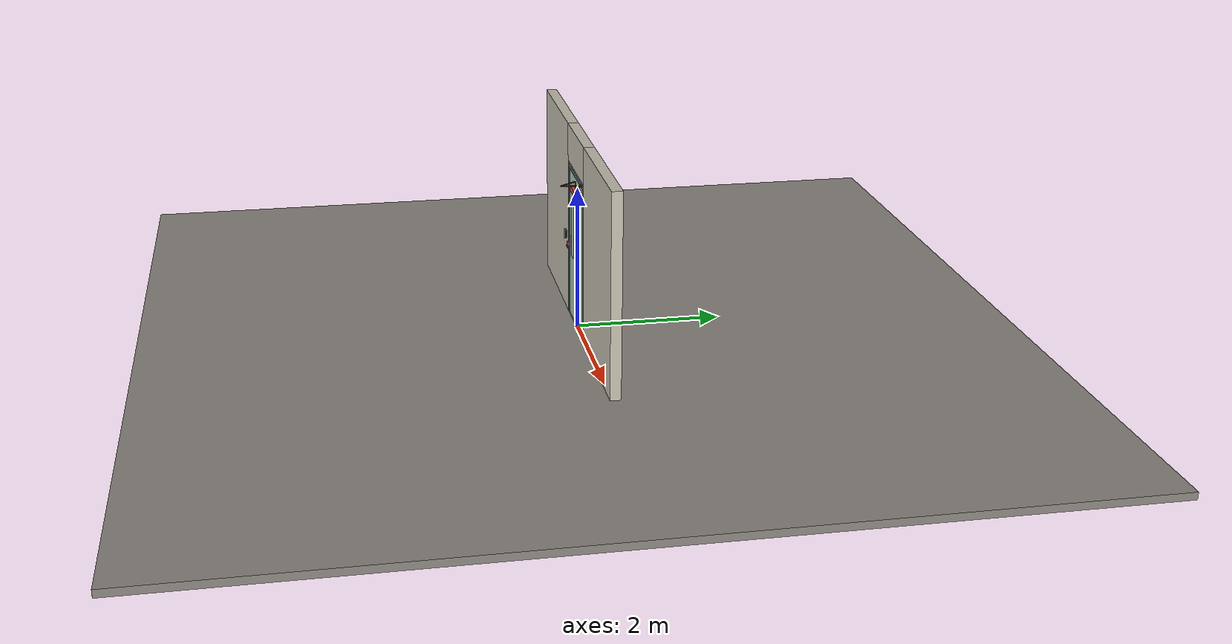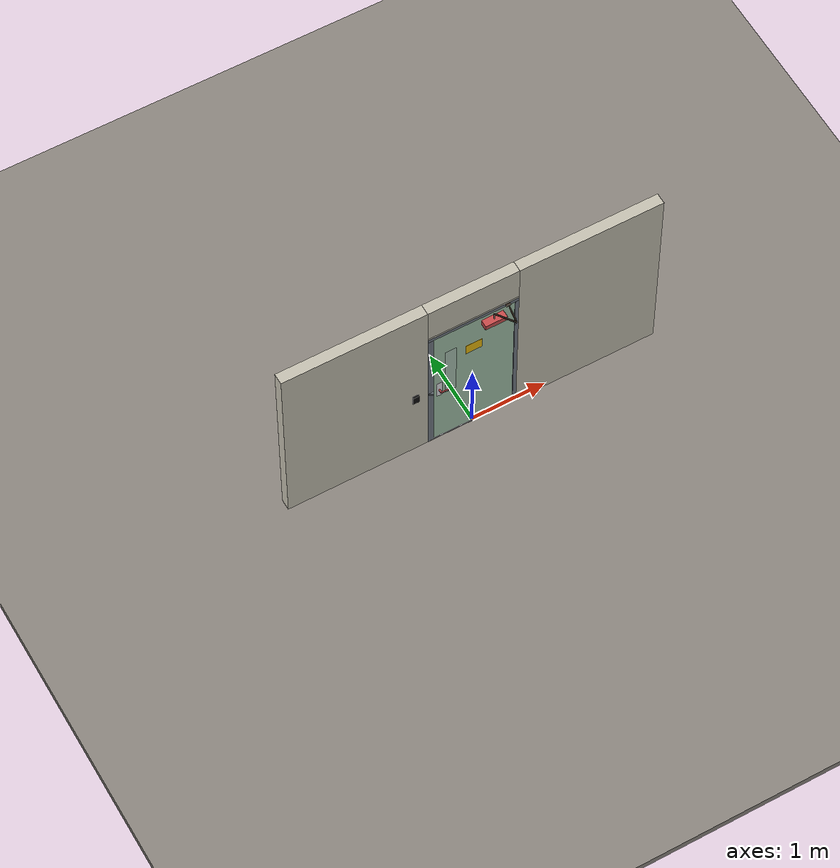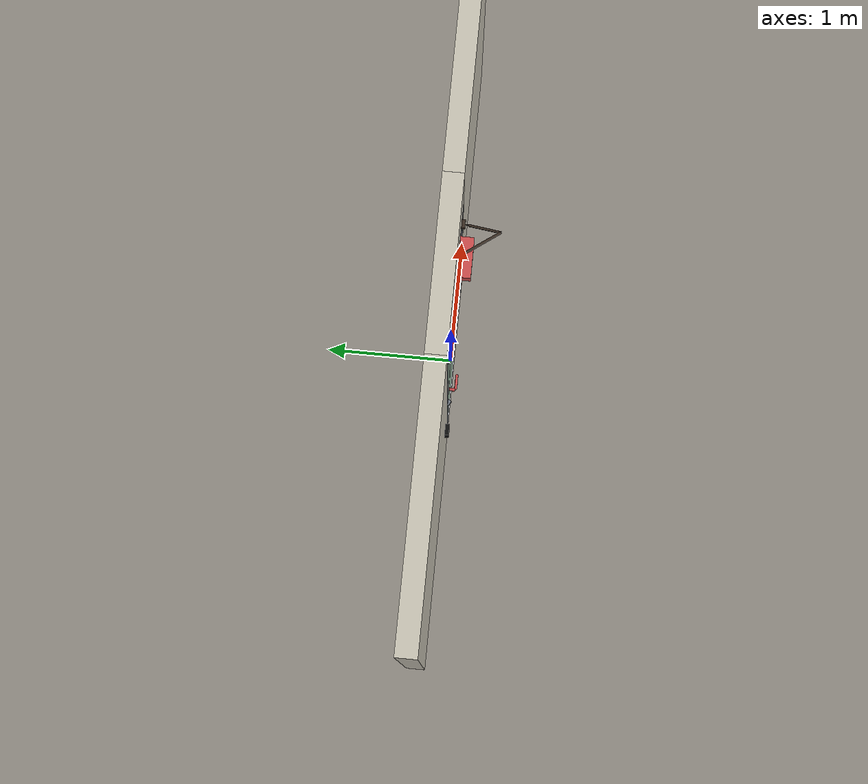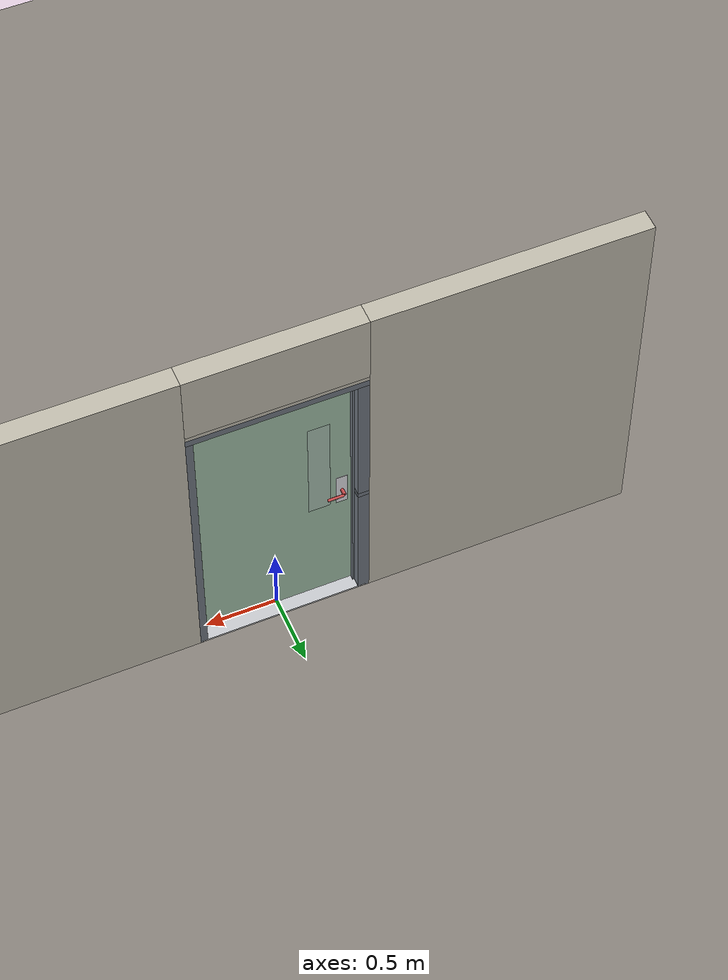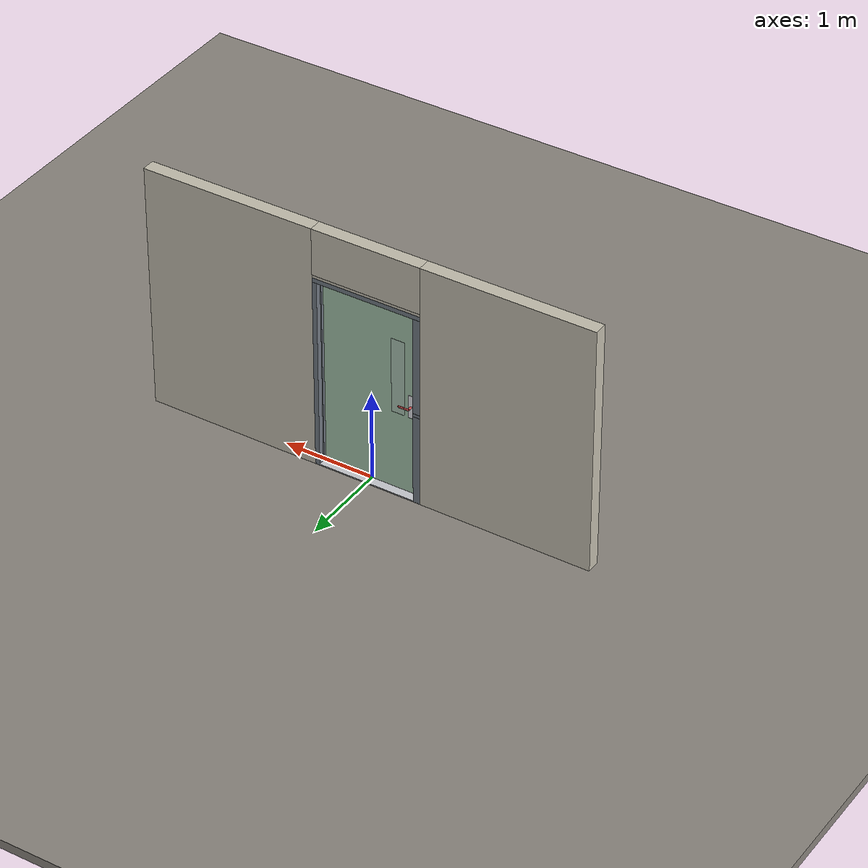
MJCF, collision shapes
<?xml version="1.0" ?>
<mujoco model="db0277_swing_single_full">
  <compiler angle="radian" meshdir="../../hardware" texturedir="../../textures" autolimits="true" inertiafromgeom="false"/>
  <option timestep="0.002" integrator="implicitfast" cone="elliptic" impratio="10" noslip_iterations="3">
    <flag multiccd="enable"/>
  </option>
  <size memory="16M"/>
  <default>
    <geom condim="4" solref="0.005 1" solimp="0.95 0.99 0.001"/>
    <joint solreflimit="0.005 1" solimplimit="0.95 0.99 0.001"/>
    <tendon solreflimit="0.005 1"/>
    <equality solref="0.002 1"/>
  </default>
  <visual>
    <headlight ambient="0.4 0.4 0.4" diffuse="0.7 0.7 0.7" specular="0.2 0.2 0.2"/>
    <quality shadowsize="4096"/>
    <map znear="0.01" zfar="60"/>
  </visual>
  <asset>
    <mesh name="card_reader_38c0bdb077" file="card_reader_38c0bdb077.obj"/>
    <mesh name="closer_body_fdc4667657" file="closer_body_fdc4667657.obj"/>
    <mesh name="hinge_e22b26c0c1" file="hinge_e22b26c0c1.obj"/>
    <mesh name="hinge_jamb_e1d088f8dc" file="hinge_jamb_e1d088f8dc.obj"/>
    <mesh name="lever_56c65af20a" file="lever_56c65af20a.obj"/>
    <material name="mat_floor" rgba="0.55 0.53 0.5 1" specular="0.2" shininess="0.15" reflectance="0"/>
    <material name="mat_wall" rgba="0.78 0.76 0.7 1" specular="0.2" shininess="0.1" reflectance="0"/>
    <material name="mat_leaf" rgba="0.65 0.78 0.68 1" specular="0.2" shininess="0.51" reflectance="0"/>
    <material name="mat_glass" rgba="0.8 0.85 0.85 0.35" specular="0.2" shininess="0.9" reflectance="0.1"/>
    <material name="mat_hinge" rgba="0.65 0.66 0.68 1" specular="0.74" shininess="0.5" reflectance="0.36"/>
    <material name="mat_op_chrome" rgba="0.9 0.9 0.92 1" specular="0.8" shininess="0.9" reflectance="0.4"/>
    <material name="mat_trim" rgba="0.85 0.66 0.3 1" specular="0.8" shininess="0.75" reflectance="0.4"/>
    <material name="mat_reader" rgba="0.05 0.05 0.05 1" specular="0.38" shininess="0.3" reflectance="0.12"/>
    <material name="mat_bolt" rgba="0.85 0.66 0.3 1" specular="0.8" shininess="0.75" reflectance="0.4"/>
    <material name="mat_frame" rgba="0.45 0.48 0.52 1" specular="0.32" shininess="0.6" reflectance="0.08"/>
    <material name="mat_threshold" rgba="0.8 0.81 0.83 1" specular="0.8" shininess="0.6" reflectance="0.4"/>
    <material name="mat_closer" rgba="0.22 0.17 0.13 1" specular="0.8" shininess="0.6" reflectance="0.4"/>
    <material name="mat_placard" rgba="0.95 0.75 0.05 1" specular="0.2" shininess="0.5" reflectance="0"/>
    <material name="mat_wallreader" rgba="0.05 0.05 0.05 1" specular="0.38" shininess="0.3" reflectance="0.12"/>
    <texture name="skybox" type="skybox" builtin="gradient" rgb1="0.6 0.7 0.85" rgb2="0.9 0.92 0.95" width="256" height="256"/>
  </asset>
  <worldbody>
    <light name="sun" pos="1.5 -2.5 4" dir="-0.3 0.5 -0.8" directional="true" diffuse="0.8 0.8 0.8" specular="0.3 0.3 0.3" castshadow="true"/>
    <light name="fill" pos="-1.5 2.5 3" dir="0.3 -0.5 -0.7" directional="true" diffuse="0.35 0.35 0.4" castshadow="false"/>
    <camera name="robot_view" pos="0 -2.594313 1.812087" xyaxes="1 0 0 0 0.26963 0.962964" fovy="52"/>
    <camera name="far_view" pos="0 2.681312 1.812087" xyaxes="-1 0 0 0 -0.26963 0.962964" fovy="52"/>
    <camera name="iso" pos="-2.004737 -2.172262 2.234138" xyaxes="0.741536 -0.670913 0 0.242917 0.268487 0.932151" fovy="46"/>
    <camera name="detail_handle" pos="-0.187 -0.877 1.32" xyaxes="0.97561 0.219512 0 -0.070934 0.315262 0.94635" fovy="38"/>
    <geom name="floor" type="box" size="6 6 0.05" pos="0 0 -0.05" material="mat_floor" group="0" contype="1" conaffinity="1" friction="0.8 0.005 0.0001" density="2400"/>
    <geom name="wall_left" type="box" size="0.9415 0.0725 1.3735" pos="-1.5585 0.0435 1.3735" material="mat_wall" group="0" contype="1" conaffinity="1" friction="0.6 0.005 0.0001" density="800"/>
    <geom name="wall_right" type="box" size="0.9565 0.0725 1.3735" pos="1.5435 0.0435 1.3735" material="mat_wall" group="0" contype="1" conaffinity="1" friction="0.6 0.005 0.0001" density="800"/>
    <geom name="wall_header" type="box" size="0.602 0.0725 0.26" pos="-0.015 0.0435 2.487" material="mat_wall" group="0" contype="1" conaffinity="1" friction="0.6 0.005 0.0001" density="800"/>
    <geom name="hinge_0_jamb" type="mesh" mesh="hinge_jamb_e1d088f8dc" pos="0.534 -0.029 0.267" quat="0 0 1 0" material="mat_hinge" group="1" contype="0" conaffinity="0" density="7850"/>
    <geom name="hinge_1_jamb" type="mesh" mesh="hinge_jamb_e1d088f8dc" pos="0.534 -0.029 1.08" quat="0 0 1 0" material="mat_hinge" group="1" contype="0" conaffinity="0" density="7850"/>
    <geom name="hinge_2_jamb" type="mesh" mesh="hinge_jamb_e1d088f8dc" pos="0.534 -0.029 1.963" quat="0 0 1 0" material="mat_hinge" group="1" contype="0" conaffinity="0" density="7850"/>
    <geom name="jamb_hinge" type="box" size="0.025 0.0725 1.0735" pos="0.562 0.0435 1.0735" material="mat_frame" group="0" contype="1" conaffinity="1" friction="0.6 0.005 0.0001" density="300"/>
    <geom name="strike_1040_wall_n" type="box" size="0.04 0.05325 0.0183" pos="-0.577 0.06275 1.04" material="mat_frame" group="0" contype="1" conaffinity="1" friction="0.6 0.005 0.0001" density="300"/>
    <geom name="strike_1040_wall_p" type="box" size="0.04 0.008 0.0183" pos="-0.577 -0.0175 1.04" material="mat_frame" group="0" contype="1" conaffinity="1" friction="0.6 0.005 0.0001" density="300"/>
    <geom name="strike_1040_ramp" type="box" size="0.04 0.018028 0.0183" pos="-0.580282 -0.018312 1.04" quat="0.957092 0 0 -0.289784" material="mat_frame" group="0" contype="1" conaffinity="1" friction="0.12 0.005 0.0001" density="300"/>
    <geom name="strike_1040_back" type="box" size="0.0285 0.0095 0.0183" pos="-0.5885 0 1.04" material="mat_frame" group="0" contype="1" conaffinity="1" friction="0.6 0.005 0.0001" density="300"/>
    <geom name="jamb_strike_0" type="box" size="0.04 0.0725 0.51085" pos="-0.577 0.0435 0.51085" material="mat_frame" group="0" contype="1" conaffinity="1" friction="0.6 0.005 0.0001" density="300"/>
    <geom name="jamb_strike_1" type="box" size="0.04 0.0725 0.54435" pos="-0.577 0.0435 1.60265" material="mat_frame" group="0" contype="1" conaffinity="1" friction="0.6 0.005 0.0001" density="300"/>
    <geom name="jamb_head" type="box" size="0.602 0.0725 0.025" pos="-0.015 0.0435 2.172" material="mat_frame" group="0" contype="1" conaffinity="1" friction="0.6 0.005 0.0001" density="300"/>
    <geom name="head_stud" type="box" size="0.602 0.0725 0.015" pos="-0.015 0.0435 2.212" material="mat_wall" group="0" contype="1" conaffinity="1" friction="0.6 0.005 0.0001" density="500"/>
    <geom name="stop_hinge" type="box" size="0.0055 0.016 1.0735" pos="0.5315 0.0385 1.0735" material="mat_frame" group="0" contype="1" conaffinity="1" friction="0.6 0.005 0.0001" density="300"/>
    <geom name="stop_strike" type="box" size="0.0055 0.016 1.0735" pos="-0.5315 0.0385 1.0735" material="mat_frame" group="0" contype="1" conaffinity="1" friction="0.6 0.005 0.0001" density="300"/>
    <geom name="stop_head" type="box" size="0.537 0.016 0.0055" pos="0 0.0385 2.1415" material="mat_frame" group="0" contype="1" conaffinity="1" friction="0.6 0.005 0.0001" density="300"/>
    <geom name="threshold" type="box" size="0.587 0.0725 0.0065" pos="0 0.0435 0.0065" material="mat_threshold" group="0" contype="1" conaffinity="1" friction="0.5 0.005 0.0001" density="2700"/>
    <geom name="closer_bracket" type="box" size="0.03 0.012 0.014" pos="0.437 -0.041 2.177" material="mat_closer" group="1" contype="0" conaffinity="0" density="2700"/>
    <geom name="wall_reader" type="box" size="0.04 0.015 0.06" pos="-0.787 -0.044 1.1" material="mat_wallreader" group="0" contype="1" conaffinity="1" friction="0.6 0.005 0.0001" density="1000"/>
    <site name="approach_point" pos="0 -1.5 0" quat="1 0 0 0" size="0.05" rgba="0.2 0.9 0.2 0.5" group="4"/>
    <site name="goal_point" pos="0 1.5 0" quat="1 0 0 0" size="0.05" rgba="0.2 0.9 0.2 0.5" group="4"/>
    <site name="door_plane_center" pos="0 0 1.0735" quat="1 0 0 0" size="0.02" rgba="0.2 0.9 0.2 0.5" group="4"/>
    <body name="leaf" pos="0.537 0 0">
      <inertial pos="-0.494173 -0.013329 1.26237" mass="70.358524" quat="0.463681 0.486338 0.523912 -0.523442" diaginertia="6.191319846 31.497214528 37.576891423"/>
      <joint name="leaf_hinge" type="hinge" axis="0 0 1" pos="-0.003 -0.029 0" limited="true" range="0 1.570796" damping="12.49954" frictionloss="0.401846" stiffness="15.177015" springref="-1.90156" armature="0.02"/>
      <geom name="leaf_slab" type="box" size="0.5335 0.022 1.063" pos="-0.5365 0 1.08" material="mat_leaf" group="0" contype="1" conaffinity="1" friction="0.4 0.005 0.0001" density="1"/>
      <geom name="leaf_glass_0" type="box" size="0.075 0.0228 0.4252" pos="-0.84763 0 1.33512" material="mat_glass" group="1" contype="0" conaffinity="0" density="1"/>
      <geom name="hinge_0" type="mesh" mesh="hinge_e22b26c0c1" pos="-0.003 -0.029 0.267" quat="0 0 1 0" material="mat_hinge" group="1" contype="0" conaffinity="0" density="7850"/>
      <geom name="hinge_1" type="mesh" mesh="hinge_e22b26c0c1" pos="-0.003 -0.029 1.08" quat="0 0 1 0" material="mat_hinge" group="1" contype="0" conaffinity="0" density="7850"/>
      <geom name="hinge_2" type="mesh" mesh="hinge_e22b26c0c1" pos="-0.003 -0.029 1.963" quat="0 0 1 0" material="mat_hinge" group="1" contype="0" conaffinity="0" density="7850"/>
      <geom name="leaf_handle_escutcheon_n" type="box" size="0.0375 0.0015 0.13" pos="-1 -0.0235 1.04" material="mat_op_chrome" group="1" contype="0" conaffinity="0" density="3000"/>
      <geom name="leaf_handle_escutcheon_p" type="box" size="0.0375 0.0015 0.13" pos="-1 0.0235 1.04" material="mat_op_chrome" group="1" contype="0" conaffinity="0" density="3000"/>
      <geom name="leaf_handle_reader" type="mesh" mesh="card_reader_38c0bdb077" pos="-1 0.022 1.2" quat="0 0 0.707107 0.707107" material="mat_reader" group="1" contype="0" conaffinity="0" density="2000"/>
      <geom name="leaf_latch_bolt_faceplate" type="box" size="0.0006 0.014 0.0283" pos="-1.0694 0 1.04" material="mat_bolt" group="1" contype="0" conaffinity="0" density="8500"/>
      <geom name="closer_body" type="mesh" mesh="closer_body_fdc4667657" pos="-0.3 -0.022 2.046" quat="0 0 -0.707107 0.707107" material="mat_closer" group="1" contype="0" conaffinity="0" density="2000"/>
      <geom name="closer_body_col" type="box" size="0.145 0.05 0.035" pos="-0.3 -0.072 2.046" material="mat_closer" group="3" contype="1" conaffinity="1" rgba="0.8 0.3 0.3 0.25" friction="0.6 0.005 0.0001" density="2000"/>
      <geom name="closer_pinion_shaft" type="cylinder" size="0.008 0.0655" pos="-0.3 -0.072 2.1115" material="mat_closer" group="1" contype="0" conaffinity="0" density="2700"/>
      <geom name="warning_placard" type="box" size="0.11 0.001 0.08" pos="-0.5365 -0.023 1.6115" material="mat_placard" group="2" contype="0" conaffinity="0" density="1000"/>
      <site name="leaf_edge_mid" pos="-1.07 0 1.063" quat="1 0 0 0" size="0.02" rgba="0.2 0.9 0.2 0.5" group="4"/>
      <body name="leaf_handle" pos="-1 0 1.04">
        <inertial pos="0.034904 0 0" mass="0.739068" quat="0.707107 0 0 -0.707107" diaginertia="0.001260094 0.003272501 0.004494637"/>
        <joint name="leaf_handle_hinge" type="hinge" axis="0 1 0" limited="true" range="0 0.87" damping="0.231314" frictionloss="0.06" stiffness="1.1" springref="-0.454545" armature="0.01"/>
        <geom name="leaf_handle_spindle" type="cylinder" size="0.006 0.034" pos="0 0 0" quat="0.707107 -0.707107 0 0" material="mat_op_chrome" group="1" contype="0" conaffinity="0" density="7850"/>
        <geom name="leaf_handle_lever_n" type="mesh" mesh="lever_56c65af20a" pos="0 -0.022 0" quat="0 0 -0.707107 0.707107" material="mat_op_chrome" group="1" contype="0" conaffinity="0" density="3000"/>
        <geom name="leaf_handle_lever_col_n" type="capsule" size="0.0095 0.0505" pos="0.06 -0.077 0" quat="0.707107 0 0.707107 0" material="mat_op_chrome" group="3" contype="1" conaffinity="1" rgba="0.8 0.3 0.3 0.25" friction="0.7 0.01 0.0001" density="3000"/>
        <geom name="leaf_handle_hub_col_n" type="cylinder" size="0.012 0.022" pos="0 -0.052 0" quat="0.707107 -0.707107 0 0" material="mat_op_chrome" group="3" contype="1" conaffinity="1" rgba="0.8 0.3 0.3 0.25" friction="0.6 0.005 0.0001" density="3000"/>
        <geom name="leaf_handle_lever_p" type="mesh" mesh="lever_56c65af20a" pos="0 0.022 0" quat="0 0 0.707107 0.707107" material="mat_op_chrome" group="1" contype="0" conaffinity="0" density="3000"/>
        <geom name="leaf_handle_lever_col_p" type="capsule" size="0.0095 0.0505" pos="0.06 0.077 0" quat="0.707107 0 0.707107 0" material="mat_op_chrome" group="3" contype="1" conaffinity="1" rgba="0.8 0.3 0.3 0.25" friction="0.7 0.01 0.0001" density="3000"/>
        <geom name="leaf_handle_hub_col_p" type="cylinder" size="0.012 0.022" pos="0 0.052 0" quat="0.707107 -0.707107 0 0" material="mat_op_chrome" group="3" contype="1" conaffinity="1" rgba="0.8 0.3 0.3 0.25" friction="0.6 0.005 0.0001" density="3000"/>
        <site name="leaf_handle_grip_n" pos="0.096 -0.077 0" quat="1 0 0 0" size="0.012" rgba="0.2 0.9 0.2 0.5" group="4"/>
        <site name="leaf_handle_grip_p" pos="0.096 0.077 0" quat="1 0 0 0" size="0.012" rgba="0.2 0.9 0.2 0.5" group="4"/>
      </body>
      <body name="leaf_latch_bolt" pos="-1.07 0 1.04">
        <inertial pos="0.0055 0 0" mass="0.074627" quat="0.92388 0.382683 0 0" diaginertia="0.000002271 0.000013255 0.000013255"/>
        <joint name="leaf_latch_bolt_slide" type="slide" axis="1 0 0" limited="true" range="0 0.019" damping="2" frictionloss="0.3" stiffness="600" springref="-0.01" armature="0.1"/>
        <geom name="leaf_latch_bolt_capsule" type="capsule" size="0.008 0.0165" pos="0.0055 0 0" quat="0.707107 0 -0.707107 0" material="mat_bolt" group="0" contype="1" conaffinity="1" friction="0.2 0.005 0.0001" density="8500"/>
      </body>
      <body name="closer_arm_main" pos="-0.3 -0.072 2.177" quat="0.890947 0 0 -0.454107">
        <inertial pos="0.14 0 0" mass="0.12096" quat="1 0 0 0" diaginertia="0.000003588 0.00079128 0.000792852"/>
        <joint name="closer_pinion" type="hinge" axis="0 0 1" limited="false" damping="0.01" armature="0.002"/>
        <geom name="closer_arm_main_geom" type="box" size="0.14 0.008 0.005" pos="0.14 0 0" material="mat_closer" group="1" contype="0" conaffinity="0" density="2700"/>
        <body name="closer_arm_fore" pos="0.28 0 0" quat="0.373215 0 0 0.927745">
          <inertial pos="0.128088 0 0" mass="0.076531" quat="1 0 0 0" diaginertia="0.000001771 0.000437665 0.000438201"/>
          <joint name="closer_elbow" type="hinge" axis="0 0 1" limited="false" damping="0.01" armature="0.002"/>
          <geom name="closer_arm_fore_geom" type="box" size="0.1125 0.007 0.004" pos="0.1125 0 0" material="mat_closer" group="1" contype="0" conaffinity="0" density="2700"/>
          <geom name="closer_fore_neck" type="box" size="0.0175 0.003 0.003" pos="0.2425 0 0" material="mat_closer" group="1" contype="0" conaffinity="0" density="2700"/>
          <geom name="closer_fore_pivot" type="cylinder" size="0.005 0.012" pos="0.26 0 0" material="mat_closer" group="1" contype="0" conaffinity="0" density="2700"/>
        </body>
      </body>
    </body>
  </worldbody>
  <tendon>
    <fixed name="leaf_latch_bolt_coupling" limited="true" range="0 10">
      <joint joint="leaf_latch_bolt_slide" coef="1"/>
      <joint joint="leaf_handle_hinge" coef="-0.023457"/>
    </fixed>
  </tendon>
  <equality>
    <connect name="closer_arm_connect" body1="closer_arm_fore" body2="world" anchor="0.26 0 0" active="true"/>
  </equality>
  <contact>
    <exclude body1="closer_arm_main" body2="leaf"/>
    <exclude body1="closer_arm_fore" body2="leaf"/>
    <exclude body1="closer_arm_main" body2="closer_arm_fore"/>
  </contact>
  <sensor>
    <jointpos name="leaf_hinge_pos" joint="leaf_hinge"/>
    <jointvel name="leaf_hinge_vel" joint="leaf_hinge"/>
    <jointpos name="leaf_handle_hinge_pos" joint="leaf_handle_hinge"/>
    <jointvel name="leaf_handle_hinge_vel" joint="leaf_handle_hinge"/>
    <jointpos name="leaf_latch_bolt_slide_pos" joint="leaf_latch_bolt_slide"/>
    <jointvel name="leaf_latch_bolt_slide_vel" joint="leaf_latch_bolt_slide"/>
  </sensor>
</mujoco>
